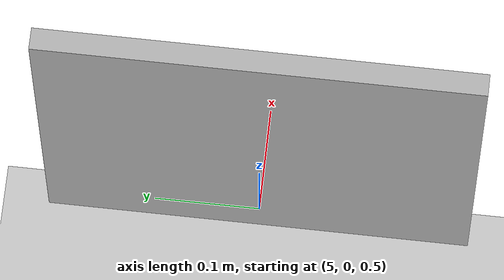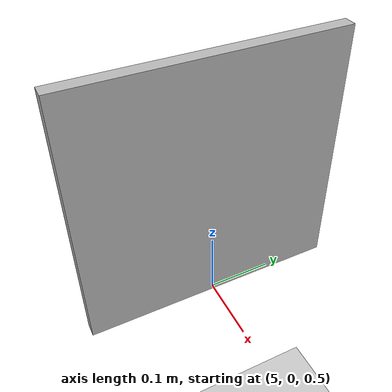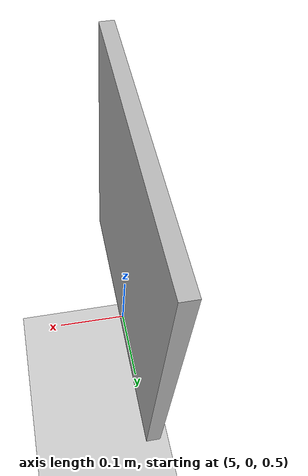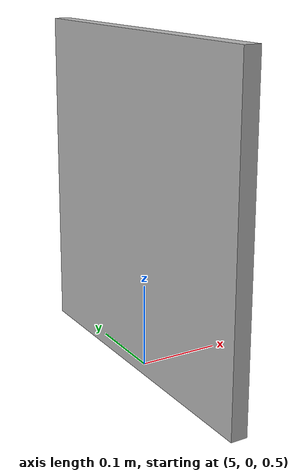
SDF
<sdf version="1.4">
  <world name="default">

    <scene>
      <ambient>0.4 0.4 0.4 1</ambient>
      <background>0.7 0.7 0.7 1</background>
      <shadows>true</shadows>
    </scene>

    <!-- A global light source -->
    <include>
      <uri>model://sun</uri>
    </include>

    <!-- A ground plane -->
    <include>
      <uri>model://ground_plane</uri>
    </include>

    <include>
      <uri>model://landing_station</uri>
      <pose>5 0 0.7 0 -1.57 0</pose>
    </include>

    <physics type="ode">
      <real_time_update_rate>1000.0</real_time_update_rate>
      <max_step_size>0.001</max_step_size>
      <real_time_factor>1</real_time_factor>
      <ode>
        <solver>
          <type>quick</type>
          <iters>150</iters>
          <precon_iters>0</precon_iters>
          <sor>1.400000</sor>
          <use_dynamic_moi_rescaling>1</use_dynamic_moi_rescaling>
        </solver>
        <constraints>
          <cfm>0.00001</cfm>
          <erp>0.2</erp>
          <contact_max_correcting_vel>2000.000000</contact_max_correcting_vel>
          <contact_surface_layer>0.01000</contact_surface_layer>
        </constraints>
      </ode>
    </physics>
  </world>

</sdf>

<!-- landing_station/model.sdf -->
<sdf version="1.4">
    <model name="landing_station">
      <pose>0 0 0  0 0 0</pose>
      <static>true</static>
      <link name="body">
        <visual name="visual">
          <geometry>
            <mesh>
            <uri>model://landing_station/meshes/marker.obj</uri>
            <scale>0.20 0.20 0.20</scale>
            </mesh>
          </geometry>
        </visual>
      </link>
    </model>
</sdf>
